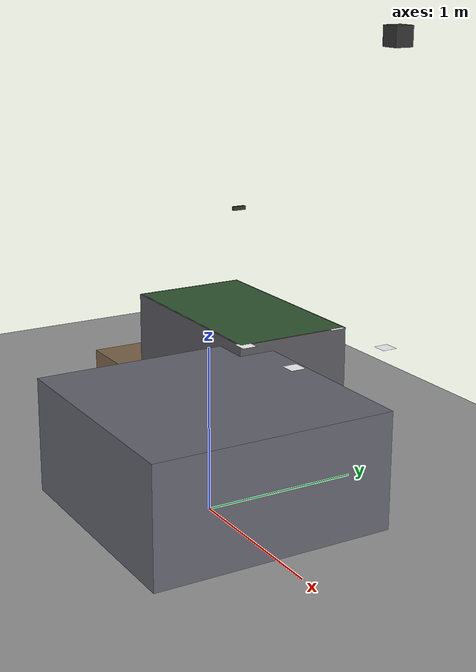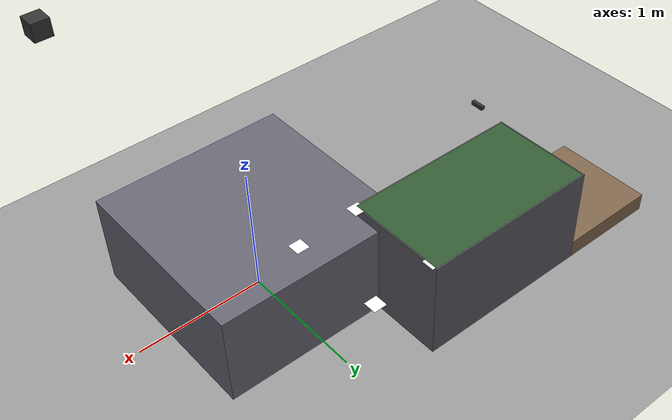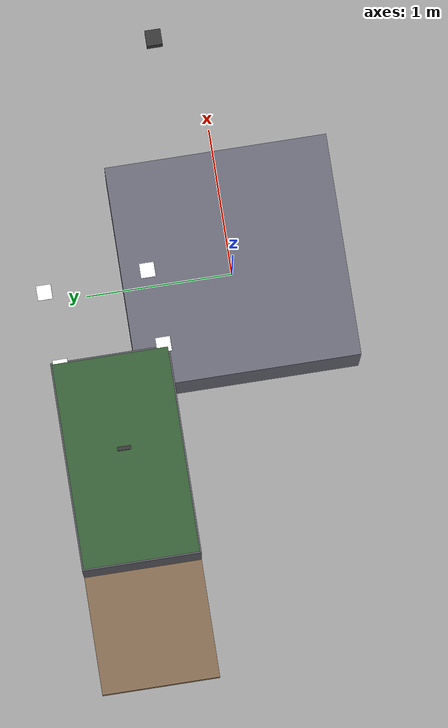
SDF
<?xml version="1.0"?>
<!-- Palletizing World — Gemelo digital actualizado con datos reales -->
<sdf version="1.8">
  <world name="palletizing">

    <!-- Physics -->
    <physics name="default_physics" type="ode">
      <max_step_size>0.001</max_step_size>
      <real_time_factor>1.0</real_time_factor>
    </physics>

    <!-- Iluminación -->
    <light type="directional" name="main_light">
      <cast_shadows>true</cast_shadows>
      <pose>0 0 8 0 0 0</pose>
      <diffuse>0.9 0.9 0.9 1</diffuse>
      <specular>0.3 0.3 0.3 1</specular>
      <direction>-0.2 0.1 -0.9</direction>
    </light>
    <light type="directional" name="fill_light">
      <cast_shadows>false</cast_shadows>
      <pose>2 2 6 0 0 0</pose>
      <diffuse>0.4 0.4 0.4 1</diffuse>
      <specular>0.1 0.1 0.1 1</specular>
      <direction>0.3 -0.2 -0.8</direction>
    </light>

    <!-- Suelo -->
    <model name="ground_plane">
      <static>true</static>
      <link name="link">
        <collision name="collision">
          <geometry>
            <plane>
              <normal>0 0 1</normal>
              <size>20 20</size>
            </plane>
          </geometry>
        </collision>
        <visual name="visual">
          <geometry>
            <plane>
              <normal>0 0 1</normal>
              <size>20 20</size>
            </plane>
          </geometry>
          <material>
            <ambient>0.6 0.6 0.6 1</ambient>
            <diffuse>0.6 0.6 0.6 1</diffuse>
          </material>
        </visual>
      </link>
    </model>

    <!-- Mesa del robot (1.50x1.50x0.72m) -->
    <model name="robot_table">
      <static>true</static>
      <pose>0 0 0.36 0 0 0</pose>
      <link name="table_link">
        <collision name="collision">
          <geometry>
            <box>
              <size>1.5 1.5 0.72</size>
            </box>
          </geometry>
        </collision>
        <visual name="visual">
          <geometry>
            <box>
              <size>1.5 1.5 0.72</size>
            </box>
          </geometry>
          <material>
            <ambient>0.3 0.3 0.35 1</ambient>
            <diffuse>0.4 0.4 0.45 1</diffuse>
          </material>
        </visual>
      </link>
    </model>

    <!-- Cinta transportadora (1.40x0.80x0.79m) -->
    <!-- Posicionada según centroide de AprilTags: Y=0.907, separada de mesa del robot -->
    <!-- Centroide AprilTags: X=-0.257, Y=0.907, Z=0.79 -->
    <!-- Cinta alineada en Y con centroide, separada en X para evitar colisión con mesa -->
    <model name="conveyor_belt">
      <static>true</static>
      <pose>-1.20 0.907 0.395 0 0 0</pose>
      <link name="belt_link">
        <collision name="collision">
          <geometry>
            <box>
              <size>1.40 0.80 0.79</size>
            </box>
          </geometry>
        </collision>
        <visual name="frame_visual">
          <geometry>
            <box>
              <size>1.40 0.80 0.79</size>
            </box>
          </geometry>
          <material>
            <ambient>0.25 0.25 0.28 1</ambient>
            <diffuse>0.35 0.35 0.38 1</diffuse>
          </material>
        </visual>
        <visual name="belt_surface">
          <pose>0 0 0.395 0 0 0</pose>
          <geometry>
            <box>
              <size>1.38 0.78 0.002</size>
            </box>
          </geometry>
          <material>
            <ambient>0.15 0.25 0.15 1</ambient>
            <diffuse>0.2 0.35 0.2 1</diffuse>
          </material>
        </visual>
      </link>
    </model>

    <!-- Pallet europeo (1.20x0.80x0.144m) -->
    <!-- Posicionado al final de la cinta transportadora, alineado en Y con centroide -->
    <model name="pallet">
      <static>true</static>
      <pose>-2.10 0.907 0.072 0 0 0</pose>
      <link name="pallet_link">
        <collision name="collision">
          <geometry>
            <box>
              <size>1.20 0.80 0.144</size>
            </box>
          </geometry>
        </collision>
        <visual name="visual">
          <geometry>
            <box>
              <size>1.20 0.80 0.144</size>
            </box>
          </geometry>
          <material>
            <ambient>0.4 0.3 0.2 1</ambient>
            <diffuse>0.5 0.4 0.3 1</diffuse>
          </material>
        </visual>
      </link>
    </model>

    <!-- Cámara en techo (2.80m) -->
    <model name="camera_mount">
      <pose>1.213 0.327 2.80 0 -1.5708 0</pose>
      <link name="camera_link">
        <visual name="camera_visual">
          <geometry>
            <box>
              <size>0.1 0.1 0.1</size>
            </box>
          </geometry>
          <material>
            <ambient>0.2 0.2 0.2 1</ambient>
            <diffuse>0.2 0.2 0.2 1</diffuse>
          </material>
        </visual>
        <collision name="collision">
          <geometry>
            <box>
              <size>0.1 0.1 0.1</size>
            </box>
          </geometry>
        </collision>
        <sensor name="camera_sensor" type="camera">
          <camera>
            <image_width>640</image_width>
            <image_height>480</image_height>
            <fx>603.78</fx>
            <fy>602.58</fy>
            <cx>316.01</cx>
            <cy>246.45</cy>
          </camera>
        </sensor>
      </link>
    </model>

    <!-- AprilTags (poses desde archivos SDF individuales) -->
    <!-- Centroide calculado: X=-0.257, Y=0.907, Z=0.79 -->
    <!-- tag_10: esquina inferior izquierda del área de trabajo -->
    <model name="tag_10">
      <pose>-0.490 0.542 0.79 0 0 0</pose>
      <static>true</static>
      <link name="tag_link">
        <visual name="tag_visual">
          <geometry>
            <plane>
              <normal>0 0 1</normal>
              <size>0.10 0.10</size>
            </plane>
          </geometry>
          <material>
            <diffuse>1 1 1 1</diffuse>
            <specular>0 0 0 1</specular>
            <pbr>
              <metal>
                <albedo_map>model://apriltags/textures/tag36_11_00010.png</albedo_map>
                <metalness>0.0</metalness>
                <roughness>1.0</roughness>
              </metal>
            </pbr>
          </material>
        </visual>
      </link>
    </model>

    <!-- tag_11: esquina superior izquierda del área de trabajo -->
    <model name="tag_11">
      <pose>-0.533 1.240 0.79 0 0 0</pose>
      <static>true</static>
      <link name="tag_link">
        <visual name="tag_visual">
          <geometry>
            <plane>
              <normal>0 0 1</normal>
              <size>0.10 0.10</size>
            </plane>
          </geometry>
          <material>
            <diffuse>1 1 1 1</diffuse>
            <specular>0 0 0 1</specular>
            <pbr>
              <metal>
                <albedo_map>model://apriltags/textures/tag36_11_00011.png</albedo_map>
                <metalness>0.0</metalness>
                <roughness>1.0</roughness>
              </metal>
            </pbr>
          </material>
        </visual>
      </link>
    </model>

    <!-- tag_12: esquina superior derecha del área de trabajo -->
    <model name="tag_12">
      <pose>-0.024 1.273 0.79 0 0 0</pose>
      <static>true</static>
      <link name="tag_link">
        <visual name="tag_visual">
          <geometry>
            <plane>
              <normal>0 0 1</normal>
              <size>0.10 0.10</size>
            </plane>
          </geometry>
          <material>
            <diffuse>1 1 1 1</diffuse>
            <specular>0 0 0 1</specular>
            <pbr>
              <metal>
                <albedo_map>model://apriltags/textures/tag36_11_00012.png</albedo_map>
                <metalness>0.0</metalness>
                <roughness>1.0</roughness>
              </metal>
            </pbr>
          </material>
        </visual>
      </link>
    </model>

    <!-- tag_13: esquina inferior derecha del área de trabajo -->
    <model name="tag_13">
      <pose>0.018 0.572 0.79 0 0 0</pose>
      <static>true</static>
      <link name="tag_link">
        <visual name="tag_visual">
          <geometry>
            <plane>
              <normal>0 0 1</normal>
              <size>0.10 0.10</size>
            </plane>
          </geometry>
          <material>
            <diffuse>1 1 1 1</diffuse>
            <specular>0 0 0 1</specular>
            <pbr>
              <metal>
                <albedo_map>model://apriltags/textures/tag36_11_00013.png</albedo_map>
                <metalness>0.0</metalness>
                <roughness>1.0</roughness>
              </metal>
            </pbr>
          </material>
        </visual>
      </link>
    </model>

    <!-- Cámara sobre la banda transportadora (1.5m sobre la banda) -->
    <model name="conveyor_camera">
      <pose>-1.20 0.907 1.50 0 1.5708 0</pose>
      <static>true</static>
      <link name="camera_link">
        <visual name="camera_visual">
          <geometry>
            <box><size>0.025 0.090 0.025</size></box>
          </geometry>
          <material>
            <ambient>0.1 0.1 0.1 1</ambient>
            <diffuse>0.2 0.2 0.2 1</diffuse>
          </material>
        </visual>
        <sensor name="color_camera" type="camera">
          <pose>0 0 0 0 0 0</pose>
          <always_on>1</always_on>
          <update_rate>15</update_rate>
          <visualize>true</visualize>
          <topic>camera/color/image_raw</topic>
          <camera>
            <horizontal_fov>0.976</horizontal_fov>
            <image>
              <width>640</width>
              <height>480</height>
              <format>RGB_INT8</format>
            </image>
            <clip>
              <near>0.1</near>
              <far>20.0</far>
            </clip>
          </camera>
        </sensor>
      </link>
    </model>

  </world>
</sdf>
